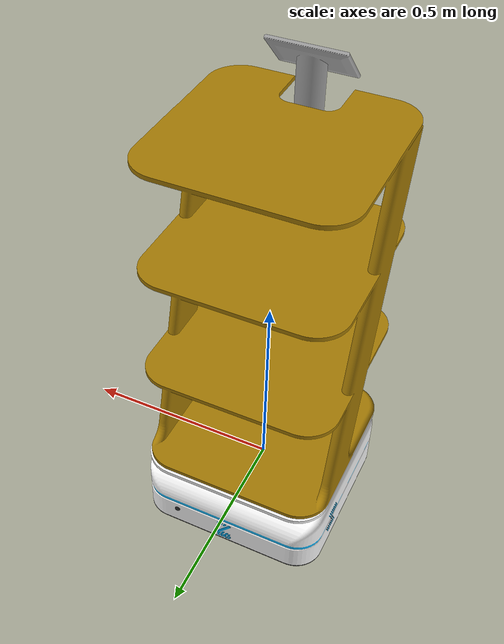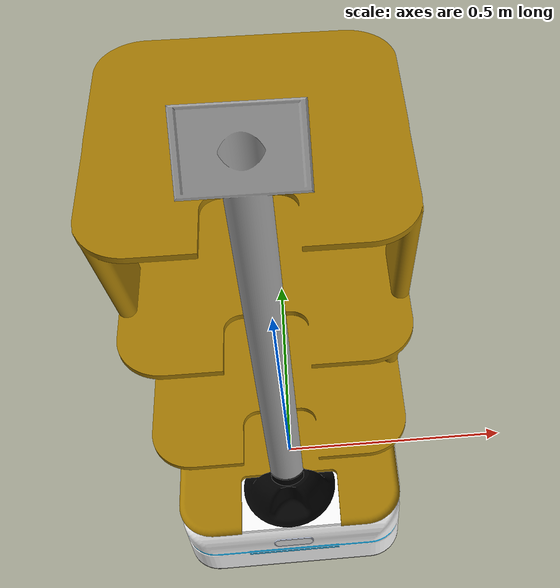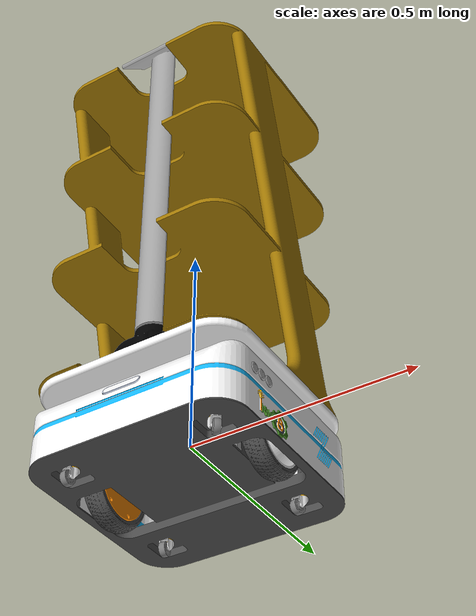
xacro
<?xml version="1.0" ?>
<!-- Generated using onshape-to-robot -->
<!-- Onshape https://cad.onshape.com/documents/7c4a8c9c2440f15a69d5cff4/w/82ee3b821ead890a7e99bd6c/e/7ba478e8d573ccb079962202 -->
<robot name="zero" xmlns:xacro="http://ros.org/wiki/xacro">

  <xacro:property name="mesh_dir" value="package://zero_description/meshes"/>

  <!-- Include Gazebo Parameter -->
  <xacro:include filename="$(find zero_description)/urdf/zero_gazebo.xacro"/>

  <!-- Ros 2 control -->
  <xacro:include filename="$(find zero_description)/urdf/zero_ros2_control.xacro"/>

  <link name="base_link"/>

  <!-- Link base_sub -->
  <link name="base_sub">
    <inertial>
      <origin xyz="0.00346746 -0.00377253 -0.0662268" rpy="0 0 0"/>
      <mass value="12.364"/>
      <inertia ixx="0.278452" ixy="0.00521848" ixz="-0.00307415" iyy="0.281561" iyz="0.00325327" izz="0.517993"/>
    </inertial>
    <!-- Part base -->
    <visual>
      <origin xyz="-0.16 0.16 -0.087" rpy="1.5708 -0 -0"/>
      <geometry>
        <mesh filename="${mesh_dir}/base.stl"/>
      </geometry>
      <material name="base_material">
        <color rgba="0.980392 0.713725 0.00392157 1"/>
      </material>
    </visual>
    <collision>
      <origin xyz="-0.16 0.16 -0.087" rpy="1.5708 -0 -0"/>
      <geometry>
        <mesh filename="${mesh_dir}/base.stl"/>
      </geometry>
    </collision>
    <!-- Part push_button___red__configuration_red -->
    <visual>
      <origin xyz="0.24 -0.15 0.00541176" rpy="0 1.5708 0"/>
      <geometry>
        <mesh filename="${mesh_dir}/push_button___red__configuration_red.stl"/>
      </geometry>
      <material name="push_button___red__configuration_red_material">
        <color rgba="0.701961 0.701961 0.701961 1"/>
      </material>
    </visual>
    <collision>
      <origin xyz="0.24 -0.15 0.00541176" rpy="0 1.5708 0"/>
      <geometry>
        <mesh filename="${mesh_dir}/push_button___red__configuration_red.stl"/>
      </geometry>
    </collision>
    <!-- Part base_2 -->
    <visual>
      <origin xyz="-0.16 -0.16 -0.087" rpy="1.5708 -0 -0"/>
      <geometry>
        <mesh filename="${mesh_dir}/base.stl"/>
      </geometry>
      <material name="base_2_material">
        <color rgba="0.980392 0.713725 0.00392157 1"/>
      </material>
    </visual>
    <collision>
      <origin xyz="-0.16 -0.16 -0.087" rpy="1.5708 -0 -0"/>
      <geometry>
        <mesh filename="${mesh_dir}/base.stl"/>
      </geometry>
    </collision>
    <!-- Part chassis_base -->
    <visual>
      <origin xyz="0 -0 -0.025" rpy="0 -0 -0"/>
      <geometry>
        <mesh filename="${mesh_dir}/chassis_base.stl"/>
      </geometry>
      <material name="chassis_base_material">
        <color rgba="0.301961 0.301961 0.301961 1"/>
      </material>
    </visual>
    <collision>
      <origin xyz="0 -0 -0.025" rpy="0 -0 -0"/>
      <geometry>
        <mesh filename="${mesh_dir}/chassis_base.stl"/>
      </geometry>
    </collision>
    <!-- Part push_button___red__configuration_red_2 -->
    <visual>
      <origin xyz="0.24 -0.125 0.00541176" rpy="0 1.5708 0"/>
      <geometry>
        <mesh filename="${mesh_dir}/push_button___red__configuration_red.stl"/>
      </geometry>
      <material name="push_button___red__configuration_red_2_material">
        <color rgba="0.701961 0.701961 0.701961 1"/>
      </material>
    </visual>
    <collision>
      <origin xyz="0.24 -0.125 0.00541176" rpy="0 1.5708 0"/>
      <geometry>
        <mesh filename="${mesh_dir}/push_button___red__configuration_red.stl"/>
      </geometry>
    </collision>
    <!-- Part component1 -->
    <visual>
      <origin xyz="0.135 0.242 -0.051618" rpy="-1.5708 -0 3.14159"/>
      <geometry>
        <mesh filename="${mesh_dir}/component1.stl"/>
      </geometry>
      <material name="component1_material">
        <color rgba="0.247059 0.247059 0.247059 1"/>
      </material>
    </visual>
    <collision>
      <origin xyz="0.135 0.242 -0.051618" rpy="-1.5708 -0 3.14159"/>
      <geometry>
        <mesh filename="${mesh_dir}/component1.stl"/>
      </geometry>
    </collision>
    <!-- Part push_button___red__configuration_red_3 -->
    <visual>
      <origin xyz="0.24 -0.1 0.00541176" rpy="0 1.5708 0"/>
      <geometry>
        <mesh filename="${mesh_dir}/push_button___red__configuration_red.stl"/>
      </geometry>
      <material name="push_button___red__configuration_red_3_material">
        <color rgba="0.701961 0.701961 0.701961 1"/>
      </material>
    </visual>
    <collision>
      <origin xyz="0.24 -0.1 0.00541176" rpy="0 1.5708 0"/>
      <geometry>
        <mesh filename="${mesh_dir}/push_button___red__configuration_red.stl"/>
      </geometry>
    </collision>
    <!-- Part part_1 -->
    <visual>
      <origin xyz="0 0 0.0269" rpy="-0 -0 3.14159"/>
      <geometry>
        <mesh filename="${mesh_dir}/part_1.dae"/>
      </geometry>
    </visual>
    <collision>
      <origin xyz="0 0 0.0269" rpy="-0 -0 3.14159"/>
      <geometry>
        <mesh filename="${mesh_dir}/part_1.dae"/>
      </geometry>
    </collision>
    <!-- Part protective_cover -->
    <visual>
      <origin xyz="0 -0 -0.025" rpy="0 -0 -0"/>
      <geometry>
        <mesh filename="${mesh_dir}/protective_cover.dae"/>
      </geometry>
    </visual>
    <collision>
      <origin xyz="0 -0 -0.025" rpy="0 -0 -0"/>
      <geometry>
        <mesh filename="${mesh_dir}/protective_cover.dae"/>
      </geometry>
    </collision>
    <!-- Part base_3 -->
    <visual>
      <origin xyz="0.16 0.16 -0.087" rpy="1.5708 -0 -0"/>
      <geometry>
        <mesh filename="${mesh_dir}/base.stl"/>
      </geometry>
      <material name="base_3_material">
        <color rgba="0.980392 0.713725 0.00392157 1"/>
      </material>
    </visual>
    <collision>
      <origin xyz="0.16 0.16 -0.087" rpy="1.5708 -0 -0"/>
      <geometry>
        <mesh filename="${mesh_dir}/base.stl"/>
      </geometry>
    </collision>
    <!-- Part payload_deck -->
    <visual>
      <origin xyz="0 -0 -0.0275" rpy="0 0 0"/>
      <geometry>
        <mesh filename="${mesh_dir}/payload_deck.dae"/>
      </geometry>

    </visual>
    <collision>
      <origin xyz="0 -0 -0.0275" rpy="0 0 0"/>
      <geometry>
        <mesh filename="${mesh_dir}/payload_deck.dae"/>
      </geometry>
    </collision>
    <!-- Part base_4 -->
    <visual>
      <origin xyz="0.16 -0.16 -0.087" rpy="1.5708 -0 -0"/>
      <geometry>
        <mesh filename="${mesh_dir}/base.stl"/>
      </geometry>
      <material name="base_4_material">
        <color rgba="0.980392 0.713725 0.00392157 1"/>
      </material>
    </visual>
    <collision>
      <origin xyz="0.16 -0.16 -0.087" rpy="1.5708 -0 -0"/>
      <geometry>
        <mesh filename="${mesh_dir}/base.stl"/>
      </geometry>
    </collision>
    <!-- Part part_6 -->
    <visual>
      <origin xyz="0 -0.214788 -0.00197616" rpy="1.22173 0 -0"/>
      <geometry>
        <mesh filename="${mesh_dir}/part_6.dae"/>
      </geometry>
    </visual>
    <collision>
      <origin xyz="0 -0.214788 -0.00197616" rpy="1.22173 0 -0"/>
      <geometry>
        <mesh filename="${mesh_dir}/part_6.dae"/>
      </geometry>
    </collision>
    <!-- Part part_1_2 -->
    <visual>
      <origin xyz="0 -0.214788 -0.00197616" rpy="1.22173 0 -0"/>
      <geometry>
        <mesh filename="${mesh_dir}/part_1__2.dae"/>
      </geometry>
    </visual>
    <collision>
      <origin xyz="0 -0.214788 -0.00197616" rpy="1.22173 0 -0"/>
      <geometry>
        <mesh filename="${mesh_dir}/part_1__2.dae"/>
      </geometry>
    </collision>
    <!-- Part part_7 -->
    <visual>
      <origin xyz="0 -0.214788 -0.00197616" rpy="1.22173 0 -0"/>
      <geometry>
        <mesh filename="${mesh_dir}/part_7.dae"/>
      </geometry>
    </visual>
    <collision>
      <origin xyz="0 -0.214788 -0.00197616" rpy="1.22173 0 -0"/>
      <geometry>
        <mesh filename="${mesh_dir}/part_7.dae"/>
      </geometry>
    </collision>
    <!-- Part part_2 -->
    <visual>
      <origin xyz="0 -0.214788 -0.00197616" rpy="1.22173 0 -0"/>
      <geometry>
        <mesh filename="${mesh_dir}/part_2.dae"/>
      </geometry>
    </visual>
    <collision>
      <origin xyz="0 -0.214788 -0.00197616" rpy="1.22173 0 -0"/>
      <geometry>
        <mesh filename="${mesh_dir}/part_2.dae"/>
      </geometry>
    </collision>
    <!-- Part part_4 -->
    <visual>
      <origin xyz="0 -0.214788 -0.00197616" rpy="1.22173 0 -0"/>
      <geometry>
        <mesh filename="${mesh_dir}/part_4.dae"/>
      </geometry>
    </visual>
    <collision>
      <origin xyz="0 -0.214788 -0.00197616" rpy="1.22173 0 -0"/>
      <geometry>
        <mesh filename="${mesh_dir}/part_4.dae"/>
      </geometry>
    </collision>
    <!-- Part part_5 -->
    <visual>
      <origin xyz="0 -0.214788 -0.00197616" rpy="1.22173 0 -0"/>
      <geometry>
        <mesh filename="${mesh_dir}/part_5.dae"/>
      </geometry>
    </visual>
    <collision>
      <origin xyz="0 -0.214788 -0.00197616" rpy="1.22173 0 -0"/>
      <geometry>
        <mesh filename="${mesh_dir}/part_5.dae"/>
      </geometry>
    </collision>
    <!-- Part part_3 -->
    <visual>
      <origin xyz="0 -0.214788 -0.00197616" rpy="1.22173 0 -0"/>
      <geometry>
        <mesh filename="${mesh_dir}/part_3.dae"/>
      </geometry>
    </visual>
    <collision>
      <origin xyz="0 -0.214788 -0.00197616" rpy="1.22173 0 -0"/>
      <geometry>
        <mesh filename="${mesh_dir}/part_3.dae"/>
      </geometry>
    </collision>
  </link>

  <!-- Fixed transform between standard base_link and CAD root base_sub -->
  <joint name="base_link_to_base_sub" type="fixed">
    <origin xyz="0 0 0" rpy="0 0 0"/>
    <parent link="base_link"/>
    <child link="base_sub"/>
  </joint>
  <!-- Frame payload (dummy link + fixed joint) -->
  <link name="payload">
    <origin xyz="0 0 0" rpy="0 -0 0"/>
    <inertial>
      <origin xyz="0 0 0" rpy="0 0 0"/>
      <mass value="1e-9"/>
      <inertia ixx="0" ixy="0" ixz="0" iyy="0" iyz="0" izz="0"/>
    </inertial>
  </link>
  <joint name="payload_frame" type="fixed">
    <origin xyz="-3.45e-10 -0.00737819 -0.0275" rpy="0 0 0"/>
    <parent link="base_sub"/>
    <child link="payload"/>
    <axis xyz="0 0 0"/>
  </joint>
  <!-- Frame payload_2 (dummy link + fixed joint) -->
  <link name="payload_2">
    <origin xyz="0 0 0" rpy="0 -0 0"/>
    <inertial>
      <origin xyz="0 0 0" rpy="0 0 0"/>
      <mass value="0.5"/>
      <inertia ixx="0" ixy="0" ixz="0" iyy="0" iyz="0" izz="0"/>
    </inertial>
    <!-- Part payload_2 -->
    <visual>
      <origin xyz="0 0 0" rpy="0 0 0"/>
      <geometry>
        <mesh filename="${mesh_dir}/payload_2.dae"/>
      </geometry>

    </visual>
    <collision>
      <origin xyz="0 0 0" rpy="0 0 0"/>
      <geometry>
        <mesh filename="${mesh_dir}/payload_2.dae"/>
      </geometry>
    </collision>
  </link>
  <joint name="payload_2_frame" type="fixed">
    <origin xyz="0 0 0" rpy="0 0 0"/>
    <parent link="payload"/>
    <child link="payload_2"/>
    <axis xyz="0 0 0"/>
  </joint>
  <!-- Link hub_motor_assembly -->
  <link name="hub_motor_assembly">
    <inertial>
      <origin xyz="5.29946e-06 1.95136e-05 0.0548583" rpy="0 0 0"/>
      <mass value="2.33473"/>
      <inertia ixx="0.00477916" ixy="1.76e-10" ixz="9.3291e-08" iyy="0.00477934" iyz="2.52658e-06" izz="0.00768357"/>
    </inertial>
    <!-- Part hub_rim_back -->
    <visual>
      <origin xyz="0 0 0.0326" rpy="-1.5708 -0 -2.70526"/>
      <geometry>
        <mesh filename="package://zero_description/meshes/hub_rim_back.stl"/>
      </geometry>
      <material name="hub_rim_back_material">
        <color rgba="0.972549 0.529412 0.00392157 1"/>
      </material>
    </visual>
    <collision>
      <origin xyz="0 0 0.0326" rpy="-1.5708 -0 -2.70526"/>
      <geometry>
        <mesh filename="package://zero_description/meshes/hub_rim_back.stl"/>
      </geometry>
    </collision>
    <!-- Part hub_rim_face -->
    <visual>
      <origin xyz="0 -0 0.0879" rpy="3.14159 0 0"/>
      <geometry>
        <mesh filename="package://zero_description/meshes/hub_rim_face.stl"/>
      </geometry>
      <material name="hub_rim_face_material">
        <color rgba="0.917647 0.917647 0.917647 1"/>
      </material>
    </visual>
    <collision>
      <origin xyz="0 -0 0.0879" rpy="3.14159 0 0"/>
      <geometry>
        <mesh filename="package://zero_description/meshes/hub_rim_face.stl"/>
      </geometry>
    </collision>
    <!-- Part shaft -->
    <visual>
      <origin xyz="0 0 -0.0255" rpy="1.5708 0 0"/>
      <geometry>
        <mesh filename="package://zero_description/meshes/shaft.stl"/>
      </geometry>
      <material name="shaft_material">
        <color rgba="0.498039 0.498039 0.498039 1"/>
      </material>
    </visual>
    <collision>
      <origin xyz="0 0 -0.0255" rpy="1.5708 0 0"/>
      <geometry>
        <mesh filename="package://zero_description/meshes/shaft.stl"/>
      </geometry>
    </collision>
    <!-- Part hub_tire -->
    <visual>
      <origin xyz="0 -0 0.05295" rpy="1.5708 0 0"/>
      <geometry>
        <mesh filename="package://zero_description/meshes/hub_tire.dae"/>
      </geometry>
    </visual>
    <collision>
      <origin xyz="0 -0 0.05295" rpy="1.5708 0 0"/>
      <geometry>
        <mesh filename="package://zero_description/meshes/hub_tire.dae"/>
      </geometry>
    </collision>
  </link>
  <!-- Joint from base_sub to hub_motor_assembly -->
  <joint name="left_wheel" type="continuous">
    <origin xyz="0.13 -0 -0.041" rpy="-1.5708 0.91029 -1.5708"/>
    <parent link="base_sub"/>
    <child link="hub_motor_assembly"/>
    <axis xyz="0 0 1"/>
    <limit effort="10" velocity="10"/>
  </joint>
  <!-- Link hub_motor_assembly_2 -->
  <link name="hub_motor_assembly_2">
    <inertial>
      <origin xyz="5.29946e-06 1.95136e-05 0.0548583" rpy="0 0 0"/>
      <mass value="2.33473"/>
      <inertia ixx="0.00477916" ixy="1.76e-10" ixz="9.3291e-08" iyy="0.00477934" iyz="2.52658e-06" izz="0.00768357"/>
    </inertial>
    <!-- Part hub_rim_back_2 -->
    <visual>
      <origin xyz="0 0 0.0326" rpy="-1.5708 0 -2.70526"/>
      <geometry>
        <mesh filename="package://zero_description/meshes/hub_rim_back.stl"/>
      </geometry>
      <material name="hub_rim_back_2_material">
        <color rgba="0.972549 0.529412 0.00392157 1"/>
      </material>
    </visual>
    <collision>
      <origin xyz="0 0 0.0326" rpy="-1.5708 0 -2.70526"/>
      <geometry>
        <mesh filename="package://zero_description/meshes/hub_rim_back.stl"/>
      </geometry>
    </collision>
    <!-- Part hub_rim_face_2 -->
    <visual>
      <origin xyz="0 0 0.0879" rpy="3.14159 -0 -0"/>
      <geometry>
        <mesh filename="package://zero_description/meshes/hub_rim_face.stl"/>
      </geometry>
      <material name="hub_rim_face_2_material">
        <color rgba="0.917647 0.917647 0.917647 1"/>
      </material>
    </visual>
    <collision>
      <origin xyz="0 0 0.0879" rpy="3.14159 -0 -0"/>
      <geometry>
        <mesh filename="package://zero_description/meshes/hub_rim_face.stl"/>
      </geometry>
    </collision>
    <!-- Part shaft_2 -->
    <visual>
      <origin xyz="-0 0 -0.0255" rpy="1.5708 -0 -0"/>
      <geometry>
        <mesh filename="package://zero_description/meshes/shaft.stl"/>
      </geometry>
      <material name="shaft_2_material">
        <color rgba="0.498039 0.498039 0.498039 1"/>
      </material>
    </visual>
    <collision>
      <origin xyz="-0 0 -0.0255" rpy="1.5708 -0 -0"/>
      <geometry>
        <mesh filename="package://zero_description/meshes/shaft.stl"/>
      </geometry>
    </collision>
    <!-- Part hub_tire_2 -->
    <visual>
      <origin xyz="0 0 0.05295" rpy="1.5708 -0 -0"/>
      <geometry>
        <mesh filename="package://zero_description/meshes/hub_tire.dae"/>
      </geometry>

    </visual>
    <collision>
      <origin xyz="0 0 0.05295" rpy="1.5708 -0 -0"/>
      <geometry>
        <mesh filename="package://zero_description/meshes/hub_tire.dae"/>
      </geometry>
    </collision>
  </link>
  <!-- Joint from base_sub to hub_motor_assembly_2 -->
  <joint name="right_wheel" type="continuous">
    <origin xyz="-0.13 -0 -0.041" rpy="1.5708 0.798618 -1.5708"/>
    <parent link="base_sub"/>
    <child link="hub_motor_assembly_2"/>
    <axis xyz="0 0 1"/>
    <limit effort="10" velocity="10"/>
  </joint>
  <!-- Link punch (backleft caster) -->
  <link name="punch">
    <inertial>
      <origin xyz="-0.00684314 -0.000166299 -0.0109139" rpy="0 0 0"/>
      <mass value="0.0243434"/>
      <inertia ixx="3.93636e-06" ixy="-2.9053e-08" ixz="-1.04424e-06" iyy="3.83891e-06" iyz="-5.7083e-08" izz="3.4357e-06"/>
    </inertial>
    <visual>
      <origin xyz="-0 0 0.00025" rpy="1.5708 -0 -0"/>
      <geometry>
        <mesh filename="${mesh_dir}/punch.stl"/>
      </geometry>
      <material name="punch_material">
        <color rgba="0.917647 0.917647 0.917647 1"/>
      </material>
    </visual>
    <collision>
      <origin xyz="-0 0 0.00025" rpy="1.5708 -0 -0"/>
      <geometry>
        <mesh filename="${mesh_dir}/punch.stl"/>
      </geometry>
    </collision>
  </link>
  <!-- Link tire (backleft caster) -->
  <link name="tire">
    <inertial>
      <origin xyz="3.4391e-08 -3.8281e-08 0.00659339" rpy="0 0 0"/>
      <mass value="0.0101114"/>
      <inertia ixx="8.73151e-07" ixy="-0" ixz="1e-12" iyy="8.73161e-07" iyz="-1e-12" izz="1.4096e-06"/>
    </inertial>
    <visual>
      <origin xyz="0.014 -0.025 0.00659339" rpy="3.14159 -0 -0"/>
      <geometry>
        <mesh filename="${mesh_dir}/tire.stl"/>
      </geometry>
      <material name="tire_material">
        <color rgba="0.498039 0.498039 0.498039 1"/>
      </material>
    </visual>
    <collision>
      <origin xyz="0.014 -0.025 0.00659339" rpy="3.14159 -0 -0"/>
      <geometry>
        <mesh filename="${mesh_dir}/tire.stl"/>
      </geometry>
    </collision>
  </link>
  <joint name="backleft_casterwheel" type="revolute">
    <origin xyz="-0.014 0.0065 -0.025" rpy="1.5708 1.32457 0"/>
    <parent link="punch"/>
    <child link="tire"/>
    <axis xyz="0 0 1"/>
    <limit effort="10" velocity="10" lower="-3.141592653589793" upper="3.141592653589793"/>
  </joint>
  <joint name="backleft_casterpunch" type="revolute">
    <origin xyz="0.16 0.16 -0.086" rpy="0 0 1.33217"/>
    <parent link="base_sub"/>
    <child link="punch"/>
    <axis xyz="0 0 1"/>
    <limit effort="10" velocity="10" lower="-3.141592653589793" upper="3.141592653589793"/>
  </joint>
  <!-- Link punch_2 (frontleft caster) -->
  <link name="punch_2">
    <inertial>
      <origin xyz="-0.00684314 -0.000166299 -0.0109139" rpy="0 0 0"/>
      <mass value="0.0243434"/>
      <inertia ixx="3.93636e-06" ixy="-2.9053e-08" ixz="-1.04424e-06" iyy="3.83891e-06" iyz="-5.7083e-08" izz="3.4357e-06"/>
    </inertial>
    <visual>
      <origin xyz="0 -0 0.00025" rpy="1.5708 -0 -0"/>
      <geometry>
        <mesh filename="${mesh_dir}/punch.stl"/>
      </geometry>
      <material name="punch_2_material">
        <color rgba="0.917647 0.917647 0.917647 1"/>
      </material>
    </visual>
    <collision>
      <origin xyz="0 -0 0.00025" rpy="1.5708 -0 -0"/>
      <geometry>
        <mesh filename="${mesh_dir}/punch.stl"/>
      </geometry>
    </collision>
  </link>
  <!-- Link tire_2 (frontleft caster) -->
  <link name="tire_2">
    <inertial>
      <origin xyz="3.4391e-08 -3.8281e-08 -0.00823677" rpy="0 0 0"/>
      <mass value="0.0101114"/>
      <inertia ixx="8.73151e-07" ixy="-0" ixz="1e-12" iyy="8.73161e-07" iyz="-1e-12" izz="1.4096e-06"/>
    </inertial>
    <visual>
      <origin xyz="0.014 -0.025 -0.00823677" rpy="3.14159 0 -0"/>
      <geometry>
        <mesh filename="${mesh_dir}/tire.stl"/>
      </geometry>
      <material name="tire_2_material">
        <color rgba="0.498039 0.498039 0.498039 1"/>
      </material>
    </visual>
    <collision>
      <origin xyz="0.014 -0.025 -0.00823677" rpy="3.14159 0 -0"/>
      <geometry>
        <mesh filename="${mesh_dir}/tire.stl"/>
      </geometry>
    </collision>
  </link>
  <joint name="frontleft_casterwheel" type="revolute">
    <origin xyz="-0.014 0.0067 -0.025" rpy="1.5708 -0.0120917 3.14159"/>
    <parent link="punch_2"/>
    <child link="tire_2"/>
    <axis xyz="0 0 1"/>
    <limit effort="10" velocity="10" lower="-3.141592653589793" upper="3.141592653589793"/>
  </joint>
  <joint name="frontleft_casterpunch" type="revolute">
    <origin xyz="0.16 -0.16 -0.086" rpy="0 -0 2.30943"/>
    <parent link="base_sub"/>
    <child link="punch_2"/>
    <axis xyz="0 0 1"/>
    <limit effort="10" velocity="10" lower="-3.141592653589793" upper="3.141592653589793"/>
  </joint>
  <!-- Link punch_3 (backright caster) -->
  <link name="punch_3">
    <inertial>
      <origin xyz="-0.00684314 -0.000166299 -0.0109139" rpy="0 0 0"/>
      <mass value="0.0243434"/>
      <inertia ixx="3.93636e-06" ixy="-2.9053e-08" ixz="-1.04424e-06" iyy="3.83891e-06" iyz="-5.7083e-08" izz="3.4357e-06"/>
    </inertial>
    <visual>
      <origin xyz="0 0 0.00025" rpy="1.5708 0 -0"/>
      <geometry>
        <mesh filename="${mesh_dir}/punch.stl"/>
      </geometry>
      <material name="punch_3_material">
        <color rgba="0.917647 0.917647 0.917647 1"/>
      </material>
    </visual>
    <collision>
      <origin xyz="0 0 0.00025" rpy="1.5708 0 -0"/>
      <geometry>
        <mesh filename="${mesh_dir}/punch.stl"/>
      </geometry>
    </collision>
  </link>
  <!-- Link tire_3 (backright caster) -->
  <link name="tire_3">
    <inertial>
      <origin xyz="-4.5036e-08 -2.4898e-08 -0.000106608" rpy="0 0 0"/>
      <mass value="0.0101114"/>
      <inertia ixx="8.73161e-07" ixy="-2e-12" ixz="-1e-12" iyy="8.73151e-07" iyz="-1e-12" izz="1.4096e-06"/>
    </inertial>
    <visual>
      <origin xyz="-0.0275085 -0.0080175 -0.000106614" rpy="3.14159 0 -1.79769"/>
      <geometry>
        <mesh filename="${mesh_dir}/tire.stl"/>
      </geometry>
      <material name="tire_3_material">
        <color rgba="0.498039 0.498039 0.498039 1"/>
      </material>
    </visual>
    <collision>
      <origin xyz="-0.0275085 -0.0080175 -0.000106614" rpy="3.14159 0 -1.79769"/>
      <geometry>
        <mesh filename="${mesh_dir}/tire.stl"/>
      </geometry>
    </collision>
  </link>
  <joint name="backright_casterwheel" type="revolute">
    <origin xyz="-0.014 0 -0.025" rpy="1.5708 0 -0"/>
    <parent link="punch_3"/>
    <child link="tire_3"/>
    <axis xyz="0 0 1"/>
    <limit effort="10" velocity="10" lower="-3.141592653589793" upper="3.141592653589793"/>
  </joint>
  <joint name="backright_casterpunch" type="revolute">
    <origin xyz="-0.16 0.16 -0.086" rpy="0 0 1.72927"/>
    <parent link="base_sub"/>
    <child link="punch_3"/>
    <axis xyz="0 0 1"/>
    <limit effort="10" velocity="10" lower="-3.141592653589793" upper="3.141592653589793"/>
  </joint>
  <!-- Link punch_4 (frontright caster) -->
  <link name="punch_4">
    <inertial>
      <origin xyz="-0.000331782 -0.00683711 -0.0109139" rpy="0 0 0"/>
      <mass value="0.0243434"/>
      <inertia ixx="3.84364e-06" ixy="3.5813e-08" ixz="-1.9006e-08" iyy="3.93163e-06" iyz="-1.04563e-06" izz="3.4357e-06"/>
    </inertial>
    <visual>
      <origin xyz="0 0 0.00025" rpy="1.5708 0 1.49801"/>
      <geometry>
        <mesh filename="${mesh_dir}/punch.stl"/>
      </geometry>
      <material name="punch_4_material">
        <color rgba="0.917647 0.917647 0.917647 1"/>
      </material>
    </visual>
    <collision>
      <origin xyz="0 0 0.00025" rpy="1.5708 0 1.49801"/>
      <geometry>
        <mesh filename="${mesh_dir}/punch.stl"/>
      </geometry>
    </collision>
  </link>
  <!-- Link tire_4 (frontright caster) -->
  <link name="tire_4">
    <inertial>
      <origin xyz="3.4391e-08 -3.8281e-08 0.00823678" rpy="0 0 0"/>
      <mass value="0.0101114"/>
      <inertia ixx="8.73151e-07" ixy="-0" ixz="1e-12" iyy="8.73161e-07" iyz="-1e-12" izz="1.4096e-06"/>
    </inertial>
    <visual>
      <origin xyz="0.014 -0.025 0.00823677" rpy="3.14159 0 -0"/>
      <geometry>
        <mesh filename="${mesh_dir}/tire.stl"/>
      </geometry>
      <material name="tire_4_material">
        <color rgba="0.498039 0.498039 0.498039 1"/>
      </material>
    </visual>
    <collision>
      <origin xyz="0.014 -0.025 0.00823677" rpy="3.14159 0 -0"/>
      <geometry>
        <mesh filename="${mesh_dir}/tire.stl"/>
      </geometry>
    </collision>
  </link>
  <joint name="frontright_casterwheel" type="revolute">
    <origin xyz="0.00716019 -0.0145592 -0.025" rpy="-1.5708 0 1.49801"/>
    <parent link="punch_4"/>
    <child link="tire_4"/>
    <axis xyz="0 0 1"/>
    <limit effort="10" velocity="10" lower="-3.141592653589793" upper="3.141592653589793"/>
  </joint>
  <joint name="frontright_casterpunch" type="revolute">
    <origin xyz="-0.16 -0.16 -0.086" rpy="0 -0 -0"/>
    <parent link="base_sub"/>
    <child link="punch_4"/>
    <axis xyz="0 0 1"/>
    <limit effort="10" velocity="10" lower="-3.141592653589793" upper="3.141592653589793"/>
  </joint>
  <!-- Caster wheels placeholder - simplified for now -->
  <!-- Link rotating_screen_mount -->
  <link name="rotating_screen_mount">
    <inertial>
      <origin xyz="0 0 0" rpy="0 0 0"/>
      <mass value="1e-09"/>
      <inertia ixx="1e-09" ixy="0" ixz="0" iyy="1e-09" iyz="0" izz="1e-09"/>
    </inertial>
    <!-- Part rotating_screen_mount -->
    <visual>
      <origin xyz="0 -0.16 0.216" rpy="3.14159 -0 0"/>
      <geometry>
        <mesh filename="${mesh_dir}/rotating_screen_mount.stl"/>
      </geometry>
      <material name="rotating_screen_mount_material">
        <color rgba="0.647059 0.647059 0.647059 1"/>
      </material>
    </visual>
    <collision>
      <origin xyz="0 -0.16 0.216" rpy="3.14159 -0 0"/>
      <geometry>
        <mesh filename="${mesh_dir}/rotating_screen_mount.stl"/>
      </geometry>
    </collision>
  </link>
  <!-- Frame screen (dummy link + fixed joint) -->
  <link name="screen">
    <origin xyz="0 0 0" rpy="0 -0 0"/>
    <inertial>
      <origin xyz="0 0 0" rpy="0 0 0"/>
      <mass value="1e-9"/>
      <inertia ixx="0" ixy="0" ixz="0" iyy="0" iyz="0" izz="0"/>
    </inertial>
    <!-- Part screen -->
  </link>
  <joint name="screen_frame" type="fixed">
    <origin xyz="-0 -0.156986 0.218643" rpy="3.14159 -0 0"/>
    <parent link="rotating_screen_mount"/>
    <child link="screen"/>
    <axis xyz="0 0 0"/>
  </joint>
  <!-- Joint from base_sub to rotating_screen_mount -->
  <joint name="screen_mount" type="revolute">
    <origin xyz="0 -0.16 0.1935" rpy="-3.14159 -0 3.14159"/>
    <parent link="base_sub"/>
    <child link="rotating_screen_mount"/>
    <axis xyz="0 0 1"/>
    <limit effort="10" velocity="10" lower="-3.141592653589793" upper="3.141592653589793"/>
  </joint>
</robot>
